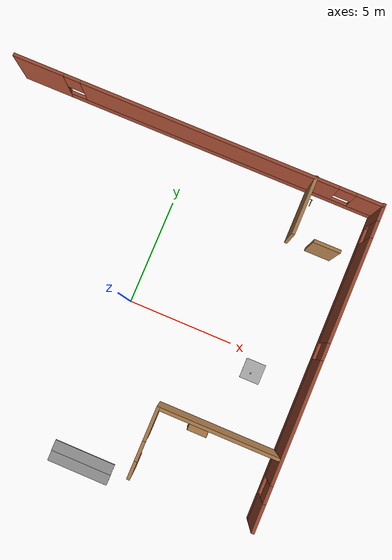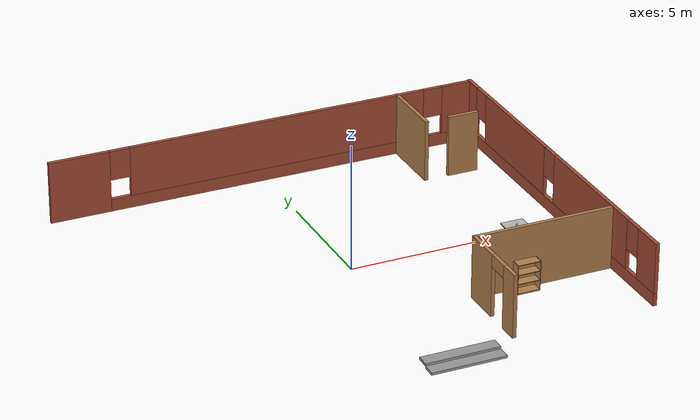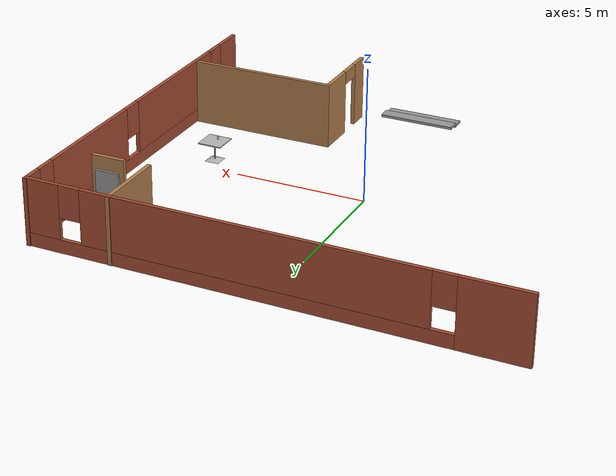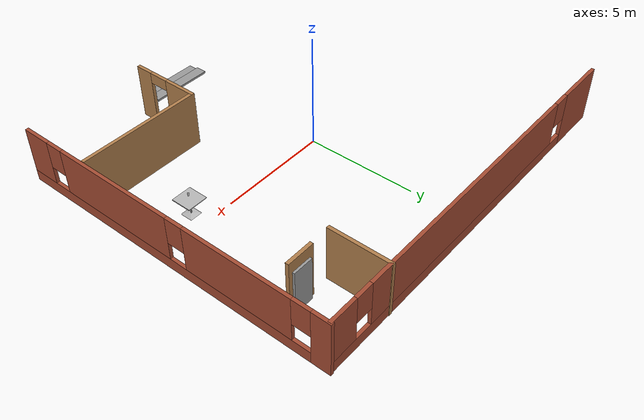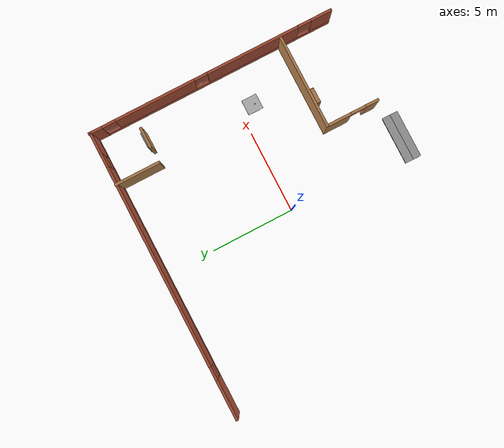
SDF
<sdf version="1.6">
 <model name="BuildingOne">
  <link name="Door_2">
   <pose>7.13008 5.46238 0 0 -0 0</pose>
   <visual name="Door_2_Visual">
    <pose>0 0 1 0 -0 0</pose>
    <geometry><box><size>0.9 0.17 2</size></box></geometry>
    <material>
     <script><uri>file://media/materials/scripts/gazebo.material</uri><name>Gazebo/Grey</name></script>
     <shader type="pixel"/>
     <ambient>0.3 0.3 0.3 1</ambient>
     <diffuse>0.7 0.7 0.7 1</diffuse>
     <specular>0.01 0.01 0.01 1</specular>
     <emissive>0 0 0 1</emissive>
    </material>
   </visual>
   <collision name="Door_2_Collision">
    <pose>0 0 1 0 -0 0</pose>
    <geometry><box><size>0.9 0.17 2</size></box></geometry>
    <surface>
     <friction>
      <ode><mu>1</mu><mu2>1</mu2><fdir1>0 0 0</fdir1><slip1>0</slip1><slip2>0</slip2></ode>
      <torsional>
       <coefficient>1</coefficient>
       <patch_radius>0</patch_radius>
       <surface_radius>0</surface_radius>
       <use_patch_radius>1</use_patch_radius>
       <ode><slip>0</slip></ode>
      </torsional>
     </friction>
     <bounce><restitution_coefficient>0</restitution_coefficient><threshold>1e+06</threshold></bounce>
     <contact>
      <collide_without_contact>0</collide_without_contact>
      <collide_without_contact_bitmask>1</collide_without_contact_bitmask>
      <collide_bitmask>1</collide_bitmask>
      <ode>
       <soft_cfm>0</soft_cfm>
       <soft_erp>0.2</soft_erp>
       <kp>1e+13</kp>
       <kd>1</kd>
       <max_vel>0.01</max_vel>
       <min_depth>0</min_depth>
      </ode>
      <bullet>
       <split_impulse>1</split_impulse>
       <split_impulse_penetration_threshold>-0.01</split_impulse_penetration_threshold>
       <soft_cfm>0</soft_cfm>
       <soft_erp>0.2</soft_erp>
       <kp>1e+13</kp>
       <kd>1</kd>
      </bullet>
     </contact>
    </surface>
   </collision>
  </link>
  <link name="Stairs_6">
   <visual name="Stairs_6_Visual_0">
    <pose>0.82349 -7.802 0.05 0 0 -3.14159</pose>
    <geometry><box><size>2.9 0.5 0.1</size></box></geometry>
    <material>
     <script><uri>file://media/materials/scripts/gazebo.material</uri><name>Gazebo/Grey</name></script>
     <ambient>1 1 1 1</ambient>
     <shader type="pixel"/>
     <diffuse>0.7 0.7 0.7 1</diffuse>
     <specular>0.01 0.01 0.01 1</specular>
     <emissive>0 0 0 1</emissive>
    </material>
    <meta><layer>0</layer></meta>
   </visual>
   <visual name="Stairs_6_Visual_1">
    <pose>0.82349 -7.302 0.15 0 0 -3.14159</pose>
    <geometry><box><size>2.9 0.5 0.1</size></box></geometry>
    <material>
     <script><uri>file://media/materials/scripts/gazebo.material</uri><name>Gazebo/Grey</name></script>
     <ambient>1 1 1 1</ambient>
     <shader type="pixel"/>
     <diffuse>0.7 0.7 0.7 1</diffuse>
     <specular>0.01 0.01 0.01 1</specular>
     <emissive>0 0 0 1</emissive>
    </material>
    <meta><layer>0</layer></meta>
   </visual>
   <collision name="Stairs_6_Collision_0">
    <pose>0.82349 -7.802 0.05 0 0 -3.14159</pose>
    <geometry><box><size>2.9 0.5 0.1</size></box></geometry>
    <surface>
     <friction>
      <ode><mu>1</mu><mu2>1</mu2><fdir1>0 0 0</fdir1><slip1>0</slip1><slip2>0</slip2></ode>
      <torsional>
       <coefficient>1</coefficient>
       <patch_radius>0</patch_radius>
       <surface_radius>0</surface_radius>
       <use_patch_radius>1</use_patch_radius>
       <ode><slip>0</slip></ode>
      </torsional>
     </friction>
     <bounce><restitution_coefficient>0</restitution_coefficient><threshold>1e+06</threshold></bounce>
     <contact>
      <collide_without_contact>0</collide_without_contact>
      <collide_without_contact_bitmask>1</collide_without_contact_bitmask>
      <collide_bitmask>1</collide_bitmask>
      <ode>
       <soft_cfm>0</soft_cfm>
       <soft_erp>0.2</soft_erp>
       <kp>1e+13</kp>
       <kd>1</kd>
       <max_vel>0.01</max_vel>
       <min_depth>0</min_depth>
      </ode>
      <bullet>
       <split_impulse>1</split_impulse>
       <split_impulse_penetration_threshold>-0.01</split_impulse_penetration_threshold>
       <soft_cfm>0</soft_cfm>
       <soft_erp>0.2</soft_erp>
       <kp>1e+13</kp>
       <kd>1</kd>
      </bullet>
     </contact>
    </surface>
   </collision>
   <collision name="Stairs_6_Collision_1">
    <pose>0.82349 -7.302 0.15 0 0 -3.14159</pose>
    <geometry><box><size>2.9 0.5 0.1</size></box></geometry>
    <surface>
     <friction>
      <ode><mu>1</mu><mu2>1</mu2><fdir1>0 0 0</fdir1><slip1>0</slip1><slip2>0</slip2></ode>
      <torsional>
       <coefficient>1</coefficient>
       <patch_radius>0</patch_radius>
       <surface_radius>0</surface_radius>
       <use_patch_radius>1</use_patch_radius>
       <ode><slip>0</slip></ode>
      </torsional>
     </friction>
     <bounce><restitution_coefficient>0</restitution_coefficient><threshold>1e+06</threshold></bounce>
     <contact>
      <collide_without_contact>0</collide_without_contact>
      <collide_without_contact_bitmask>1</collide_without_contact_bitmask>
      <collide_bitmask>1</collide_bitmask>
      <ode>
       <soft_cfm>0</soft_cfm>
       <soft_erp>0.2</soft_erp>
       <kp>1e+13</kp>
       <kd>1</kd>
       <max_vel>0.01</max_vel>
       <min_depth>0</min_depth>
      </ode>
      <bullet>
       <split_impulse>1</split_impulse>
       <split_impulse_penetration_threshold>-0.01</split_impulse_penetration_threshold>
       <soft_cfm>0</soft_cfm>
       <soft_erp>0.2</soft_erp>
       <kp>1e+13</kp>
       <kd>1</kd>
      </bullet>
     </contact>
    </surface>
   </collision>
  </link>
  <link name="Wall_11">
   <pose>3.11744 -5.29319 0 0 -0 1.57077</pose>
   <visual name="Wall_11_Visual_0">
    <pose>-1.22398 0 1.25 0 -0 0</pose>
    <geometry><box><size>0.802043 0.15 2.5</size></box></geometry>
    <material>
     <script><uri>file://media/materials/scripts/gazebo.material</uri><name>Gazebo/Wood</name></script>
     <ambient>1 1 1 1</ambient>
     <shader type="pixel"/>
     <diffuse>1 1 1 1</diffuse>
     <specular>0.2 0.2 0.2 1</specular>
     <emissive>0 0 0 1</emissive>
    </material>
    <meta><layer>0</layer></meta>
   </visual>
   <visual name="Wall_11_Visual_1">
    <pose>0.851022 0 1.25 0 -0 0</pose>
    <geometry><box><size>1.54796 0.15 2.5</size></box></geometry>
    <material>
     <script><uri>file://media/materials/scripts/gazebo.material</uri><name>Gazebo/Wood</name></script>
     <ambient>1 1 1 1</ambient>
     <shader type="pixel"/>
     <diffuse>1 1 1 1</diffuse>
     <specular>0.2 0.2 0.2 1</specular>
     <emissive>0 0 0 1</emissive>
    </material>
    <meta><layer>0</layer></meta>
   </visual>
   <visual name="Wall_11_Visual_2">
    <pose>-0.372957 0 2.25 0 -0 0</pose>
    <geometry><box><size>0.9 0.15 0.5</size></box></geometry>
    <material>
     <script><uri>file://media/materials/scripts/gazebo.material</uri><name>Gazebo/Wood</name></script>
     <ambient>1 1 1 1</ambient>
     <shader type="pixel"/>
     <diffuse>1 1 1 1</diffuse>
     <specular>0.2 0.2 0.2 1</specular>
     <emissive>0 0 0 1</emissive>
    </material>
    <meta><layer>0</layer></meta>
   </visual>
   <collision name="Wall_11_Collision_0">
    <pose>-1.22398 0 1.25 0 -0 0</pose>
    <geometry><box><size>0.802043 0.15 2.5</size></box></geometry>
    <surface>
     <friction>
      <ode><mu>1</mu><mu2>1</mu2><fdir1>0 0 0</fdir1><slip1>0</slip1><slip2>0</slip2></ode>
      <torsional>
       <coefficient>1</coefficient>
       <patch_radius>0</patch_radius>
       <surface_radius>0</surface_radius>
       <use_patch_radius>1</use_patch_radius>
       <ode><slip>0</slip></ode>
      </torsional>
     </friction>
     <bounce><restitution_coefficient>0</restitution_coefficient><threshold>1e+06</threshold></bounce>
     <contact>
      <collide_without_contact>0</collide_without_contact>
      <collide_without_contact_bitmask>1</collide_without_contact_bitmask>
      <collide_bitmask>1</collide_bitmask>
      <ode>
       <soft_cfm>0</soft_cfm>
       <soft_erp>0.2</soft_erp>
       <kp>1e+13</kp>
       <kd>1</kd>
       <max_vel>0.01</max_vel>
       <min_depth>0</min_depth>
      </ode>
      <bullet>
       <split_impulse>1</split_impulse>
       <split_impulse_penetration_threshold>-0.01</split_impulse_penetration_threshold>
       <soft_cfm>0</soft_cfm>
       <soft_erp>0.2</soft_erp>
       <kp>1e+13</kp>
       <kd>1</kd>
      </bullet>
     </contact>
    </surface>
   </collision>
   <collision name="Wall_11_Collision_1">
    <pose>0.851022 0 1.25 0 -0 0</pose>
    <geometry><box><size>1.54796 0.15 2.5</size></box></geometry>
    <surface>
     <friction>
      <ode><mu>1</mu><mu2>1</mu2><fdir1>0 0 0</fdir1><slip1>0</slip1><slip2>0</slip2></ode>
      <torsional>
       <coefficient>1</coefficient>
       <patch_radius>0</patch_radius>
       <surface_radius>0</surface_radius>
       <use_patch_radius>1</use_patch_radius>
       <ode><slip>0</slip></ode>
      </torsional>
     </friction>
     <bounce><restitution_coefficient>0</restitution_coefficient><threshold>1e+06</threshold></bounce>
     <contact>
      <collide_without_contact>0</collide_without_contact>
      <collide_without_contact_bitmask>1</collide_without_contact_bitmask>
      <collide_bitmask>1</collide_bitmask>
      <ode>
       <soft_cfm>0</soft_cfm>
       <soft_erp>0.2</soft_erp>
       <kp>1e+13</kp>
       <kd>1</kd>
       <max_vel>0.01</max_vel>
       <min_depth>0</min_depth>
      </ode>
      <bullet>
       <split_impulse>1</split_impulse>
       <split_impulse_penetration_threshold>-0.01</split_impulse_penetration_threshold>
       <soft_cfm>0</soft_cfm>
       <soft_erp>0.2</soft_erp>
       <kp>1e+13</kp>
       <kd>1</kd>
      </bullet>
     </contact>
    </surface>
   </collision>
   <collision name="Wall_11_Collision_2">
    <pose>-0.372957 0 2.25 0 -0 0</pose>
    <geometry><box><size>0.9 0.15 0.5</size></box></geometry>
    <surface>
     <friction>
      <ode><mu>1</mu><mu2>1</mu2><fdir1>0 0 0</fdir1><slip1>0</slip1><slip2>0</slip2></ode>
      <torsional>
       <coefficient>1</coefficient>
       <patch_radius>0</patch_radius>
       <surface_radius>0</surface_radius>
       <use_patch_radius>1</use_patch_radius>
       <ode><slip>0</slip></ode>
      </torsional>
     </friction>
     <bounce><restitution_coefficient>0</restitution_coefficient><threshold>1e+06</threshold></bounce>
     <contact>
      <collide_without_contact>0</collide_without_contact>
      <collide_without_contact_bitmask>1</collide_without_contact_bitmask>
      <collide_bitmask>1</collide_bitmask>
      <ode>
       <soft_cfm>0</soft_cfm>
       <soft_erp>0.2</soft_erp>
       <kp>1e+13</kp>
       <kd>1</kd>
       <max_vel>0.01</max_vel>
       <min_depth>0</min_depth>
      </ode>
      <bullet>
       <split_impulse>1</split_impulse>
       <split_impulse_penetration_threshold>-0.01</split_impulse_penetration_threshold>
       <soft_cfm>0</soft_cfm>
       <soft_erp>0.2</soft_erp>
       <kp>1e+13</kp>
       <kd>1</kd>
      </bullet>
     </contact>
    </surface>
   </collision>
  </link>
  <link name="Wall_12">
   <pose>5.84249 -3.74317 0 0 -0 0</pose>
   <visual name="Wall_12_Visual">
    <pose>0 0 1.25 0 -0 0</pose>
    <geometry><box><size>5.6 0.15 2.5</size></box></geometry>
    <material>
     <script><uri>file://media/materials/scripts/gazebo.material</uri><name>Gazebo/Wood</name></script>
     <ambient>1 1 1 1</ambient>
     <shader type="pixel"/>
     <diffuse>1 1 1 1</diffuse>
     <specular>0.2 0.2 0.2 1</specular>
     <emissive>0 0 0 1</emissive>
    </material>
    <meta><layer>0</layer></meta>
   </visual>
   <collision name="Wall_12_Collision">
    <pose>0 0 1.25 0 -0 0</pose>
    <geometry><box><size>5.6 0.15 2.5</size></box></geometry>
    <surface>
     <friction>
      <ode><mu>1</mu><mu2>1</mu2><fdir1>0 0 0</fdir1><slip1>0</slip1><slip2>0</slip2></ode>
      <torsional>
       <coefficient>1</coefficient>
       <patch_radius>0</patch_radius>
       <surface_radius>0</surface_radius>
       <use_patch_radius>1</use_patch_radius>
       <ode><slip>0</slip></ode>
      </torsional>
     </friction>
     <bounce><restitution_coefficient>0</restitution_coefficient><threshold>1e+06</threshold></bounce>
     <contact>
      <collide_without_contact>0</collide_without_contact>
      <collide_without_contact_bitmask>1</collide_without_contact_bitmask>
      <collide_bitmask>1</collide_bitmask>
      <ode>
       <soft_cfm>0</soft_cfm>
       <soft_erp>0.2</soft_erp>
       <kp>1e+13</kp>
       <kd>1</kd>
       <max_vel>0.01</max_vel>
       <min_depth>0</min_depth>
      </ode>
      <bullet>
       <split_impulse>1</split_impulse>
       <split_impulse_penetration_threshold>-0.01</split_impulse_penetration_threshold>
       <soft_cfm>0</soft_cfm>
       <soft_erp>0.2</soft_erp>
       <kp>1e+13</kp>
       <kd>1</kd>
      </bullet>
     </contact>
    </surface>
   </collision>
  </link>
  <link name="Wall_4">
   <pose>-0.00351 7.94782 0 0 -0 0</pose>
   <visual name="Wall_4_Visual_0">
    <pose>-7.54363 0 1.25 0 -0 0</pose>
    <geometry><box><size>2.41275 0.15 2.5</size></box></geometry>
    <material>
     <script><uri>file://media/materials/scripts/gazebo.material</uri><name>Gazebo/Bricks</name></script>
     <ambient>1 1 1 1</ambient>
     <shader type="pixel"/>
     <diffuse>1 1 1 1</diffuse>
     <specular>0.2 0.2 0.2 1</specular>
     <emissive>0 0 0 1</emissive>
    </material>
    <meta><layer>0</layer></meta>
   </visual>
   <visual name="Wall_4_Visual_1">
    <pose>1.20637 0 0.25 0 -0 0</pose>
    <geometry><box><size>15.0873 0.15 0.5</size></box></geometry>
    <material>
     <script><uri>file://media/materials/scripts/gazebo.material</uri><name>Gazebo/Bricks</name></script>
     <ambient>1 1 1 1</ambient>
     <shader type="pixel"/>
     <diffuse>1 1 1 1</diffuse>
     <specular>0.2 0.2 0.2 1</specular>
     <emissive>0 0 0 1</emissive>
    </material>
    <meta><layer>0</layer></meta>
   </visual>
   <visual name="Wall_4_Visual_2">
    <pose>0.5633 0 1.5 0 -0 0</pose>
    <geometry><box><size>12.2011 0.15 2</size></box></geometry>
    <material>
     <script><uri>file://media/materials/scripts/gazebo.material</uri><name>Gazebo/Bricks</name></script>
     <ambient>1 1 1 1</ambient>
     <shader type="pixel"/>
     <diffuse>1 1 1 1</diffuse>
     <specular>0.2 0.2 0.2 1</specular>
     <emissive>0 0 0 1</emissive>
    </material>
    <meta><layer>0</layer></meta>
   </visual>
   <visual name="Wall_4_Visual_3">
    <pose>8.10693 0 1.5 0 -0 0</pose>
    <geometry><box><size>1.28615 0.15 2</size></box></geometry>
    <material>
     <script><uri>file://media/materials/scripts/gazebo.material</uri><name>Gazebo/Bricks</name></script>
     <ambient>1 1 1 1</ambient>
     <shader type="pixel"/>
     <diffuse>1 1 1 1</diffuse>
     <specular>0.2 0.2 0.2 1</specular>
     <emissive>0 0 0 1</emissive>
    </material>
    <meta><layer>0</layer></meta>
   </visual>
   <visual name="Wall_4_Visual_4">
    <pose>-5.93725 0 1.9 0 -0 0</pose>
    <geometry><box><size>0.8 0.15 1.2</size></box></geometry>
    <material>
     <script><uri>file://media/materials/scripts/gazebo.material</uri><name>Gazebo/Bricks</name></script>
     <ambient>1 1 1 1</ambient>
     <shader type="pixel"/>
     <diffuse>1 1 1 1</diffuse>
     <specular>0.2 0.2 0.2 1</specular>
     <emissive>0 0 0 1</emissive>
    </material>
    <meta><layer>0</layer></meta>
   </visual>
   <visual name="Wall_4_Visual_5">
    <pose>7.06385 0 1.9 0 -0 0</pose>
    <geometry><box><size>0.8 0.15 1.2</size></box></geometry>
    <material>
     <script><uri>file://media/materials/scripts/gazebo.material</uri><name>Gazebo/Bricks</name></script>
     <ambient>1 1 1 1</ambient>
     <shader type="pixel"/>
     <diffuse>1 1 1 1</diffuse>
     <specular>0.2 0.2 0.2 1</specular>
     <emissive>0 0 0 1</emissive>
    </material>
    <meta><layer>0</layer></meta>
   </visual>
   <collision name="Wall_4_Collision_0">
    <pose>-7.54363 0 1.25 0 -0 0</pose>
    <geometry><box><size>2.41275 0.15 2.5</size></box></geometry>
    <surface>
     <friction>
      <ode><mu>1</mu><mu2>1</mu2><fdir1>0 0 0</fdir1><slip1>0</slip1><slip2>0</slip2></ode>
      <torsional>
       <coefficient>1</coefficient>
       <patch_radius>0</patch_radius>
       <surface_radius>0</surface_radius>
       <use_patch_radius>1</use_patch_radius>
       <ode><slip>0</slip></ode>
      </torsional>
     </friction>
     <bounce><restitution_coefficient>0</restitution_coefficient><threshold>1e+06</threshold></bounce>
     <contact>
      <collide_without_contact>0</collide_without_contact>
      <collide_without_contact_bitmask>1</collide_without_contact_bitmask>
      <collide_bitmask>1</collide_bitmask>
      <ode>
       <soft_cfm>0</soft_cfm>
       <soft_erp>0.2</soft_erp>
       <kp>1e+13</kp>
       <kd>1</kd>
       <max_vel>0.01</max_vel>
       <min_depth>0</min_depth>
      </ode>
      <bullet>
       <split_impulse>1</split_impulse>
       <split_impulse_penetration_threshold>-0.01</split_impulse_penetration_threshold>
       <soft_cfm>0</soft_cfm>
       <soft_erp>0.2</soft_erp>
       <kp>1e+13</kp>
       <kd>1</kd>
      </bullet>
     </contact>
    </surface>
   </collision>
   <collision name="Wall_4_Collision_1">
    <pose>1.20637 0 0.25 0 -0 0</pose>
    <geometry><box><size>15.0873 0.15 0.5</size></box></geometry>
    <surface>
     <friction>
      <ode><mu>1</mu><mu2>1</mu2><fdir1>0 0 0</fdir1><slip1>0</slip1><slip2>0</slip2></ode>
      <torsional>
       <coefficient>1</coefficient>
       <patch_radius>0</patch_radius>
       <surface_radius>0</surface_radius>
       <use_patch_radius>1</use_patch_radius>
       <ode><slip>0</slip></ode>
      </torsional>
     </friction>
     <bounce><restitution_coefficient>0</restitution_coefficient><threshold>1e+06</threshold></bounce>
     <contact>
      <collide_without_contact>0</collide_without_contact>
      <collide_without_contact_bitmask>1</collide_without_contact_bitmask>
      <collide_bitmask>1</collide_bitmask>
      <ode>
       <soft_cfm>0</soft_cfm>
       <soft_erp>0.2</soft_erp>
       <kp>1e+13</kp>
       <kd>1</kd>
       <max_vel>0.01</max_vel>
       <min_depth>0</min_depth>
      </ode>
      <bullet>
       <split_impulse>1</split_impulse>
       <split_impulse_penetration_threshold>-0.01</split_impulse_penetration_threshold>
       <soft_cfm>0</soft_cfm>
       <soft_erp>0.2</soft_erp>
       <kp>1e+13</kp>
       <kd>1</kd>
      </bullet>
     </contact>
    </surface>
   </collision>
   <collision name="Wall_4_Collision_2">
    <pose>0.5633 0 1.5 0 -0 0</pose>
    <geometry><box><size>12.2011 0.15 2</size></box></geometry>
    <surface>
     <friction>
      <ode><mu>1</mu><mu2>1</mu2><fdir1>0 0 0</fdir1><slip1>0</slip1><slip2>0</slip2></ode>
      <torsional>
       <coefficient>1</coefficient>
       <patch_radius>0</patch_radius>
       <surface_radius>0</surface_radius>
       <use_patch_radius>1</use_patch_radius>
       <ode><slip>0</slip></ode>
      </torsional>
     </friction>
     <bounce><restitution_coefficient>0</restitution_coefficient><threshold>1e+06</threshold></bounce>
     <contact>
      <collide_without_contact>0</collide_without_contact>
      <collide_without_contact_bitmask>1</collide_without_contact_bitmask>
      <collide_bitmask>1</collide_bitmask>
      <ode>
       <soft_cfm>0</soft_cfm>
       <soft_erp>0.2</soft_erp>
       <kp>1e+13</kp>
       <kd>1</kd>
       <max_vel>0.01</max_vel>
       <min_depth>0</min_depth>
      </ode>
      <bullet>
       <split_impulse>1</split_impulse>
       <split_impulse_penetration_threshold>-0.01</split_impulse_penetration_threshold>
       <soft_cfm>0</soft_cfm>
       <soft_erp>0.2</soft_erp>
       <kp>1e+13</kp>
       <kd>1</kd>
      </bullet>
     </contact>
    </surface>
   </collision>
   <collision name="Wall_4_Collision_3">
    <pose>8.10693 0 1.5 0 -0 0</pose>
    <geometry><box><size>1.28615 0.15 2</size></box></geometry>
    <surface>
     <friction>
      <ode><mu>1</mu><mu2>1</mu2><fdir1>0 0 0</fdir1><slip1>0</slip1><slip2>0</slip2></ode>
      <torsional>
       <coefficient>1</coefficient>
       <patch_radius>0</patch_radius>
       <surface_radius>0</surface_radius>
       <use_patch_radius>1</use_patch_radius>
       <ode><slip>0</slip></ode>
      </torsional>
     </friction>
     <bounce><restitution_coefficient>0</restitution_coefficient><threshold>1e+06</threshold></bounce>
     <contact>
      <collide_without_contact>0</collide_without_contact>
      <collide_without_contact_bitmask>1</collide_without_contact_bitmask>
      <collide_bitmask>1</collide_bitmask>
      <ode>
       <soft_cfm>0</soft_cfm>
       <soft_erp>0.2</soft_erp>
       <kp>1e+13</kp>
       <kd>1</kd>
       <max_vel>0.01</max_vel>
       <min_depth>0</min_depth>
      </ode>
      <bullet>
       <split_impulse>1</split_impulse>
       <split_impulse_penetration_threshold>-0.01</split_impulse_penetration_threshold>
       <soft_cfm>0</soft_cfm>
       <soft_erp>0.2</soft_erp>
       <kp>1e+13</kp>
       <kd>1</kd>
      </bullet>
     </contact>
    </surface>
   </collision>
   <collision name="Wall_4_Collision_5">
    <pose>7.06385 0 1.9 0 -0 0</pose>
    <geometry><box><size>0.8 0.15 1.2</size></box></geometry>
    <surface>
     <friction>
      <ode><mu>1</mu><mu2>1</mu2><fdir1>0 0 0</fdir1><slip1>0</slip1><slip2>0</slip2></ode>
      <torsional>
       <coefficient>1</coefficient>
       <patch_radius>0</patch_radius>
       <surface_radius>0</surface_radius>
       <use_patch_radius>1</use_patch_radius>
       <ode><slip>0</slip></ode>
      </torsional>
     </friction>
     <bounce><restitution_coefficient>0</restitution_coefficient><threshold>1e+06</threshold></bounce>
     <contact>
      <collide_without_contact>0</collide_without_contact>
      <collide_without_contact_bitmask>1</collide_without_contact_bitmask>
      <collide_bitmask>1</collide_bitmask>
      <ode>
       <soft_cfm>0</soft_cfm>
       <soft_erp>0.2</soft_erp>
       <kp>1e+13</kp>
       <kd>1</kd>
       <max_vel>0.01</max_vel>
       <min_depth>0</min_depth>
      </ode>
      <bullet>
       <split_impulse>1</split_impulse>
       <split_impulse_penetration_threshold>-0.01</split_impulse_penetration_threshold>
       <soft_cfm>0</soft_cfm>
       <soft_erp>0.2</soft_erp>
       <kp>1e+13</kp>
       <kd>1</kd>
      </bullet>
     </contact>
    </surface>
   </collision>
   <collision name="Wall_4_Collision_4">
    <pose>-5.93725 0 1.9 0 -0 0</pose>
    <geometry><box><size>0.8 0.15 1.2</size></box></geometry>
    <surface>
     <friction>
      <ode><mu>1</mu><mu2>1</mu2><fdir1>0 0 0</fdir1><slip1>0</slip1><slip2>0</slip2></ode>
      <torsional>
       <coefficient>1</coefficient>
       <patch_radius>0</patch_radius>
       <surface_radius>0</surface_radius>
       <use_patch_radius>1</use_patch_radius>
       <ode><slip>0</slip></ode>
      </torsional>
     </friction>
     <bounce><restitution_coefficient>0</restitution_coefficient><threshold>1e+06</threshold></bounce>
     <contact>
      <collide_without_contact>0</collide_without_contact>
      <collide_without_contact_bitmask>1</collide_without_contact_bitmask>
      <collide_bitmask>1</collide_bitmask>
      <ode>
       <soft_cfm>0</soft_cfm>
       <soft_erp>0.2</soft_erp>
       <kp>1e+13</kp>
       <kd>1</kd>
       <max_vel>0.01</max_vel>
       <min_depth>0</min_depth>
      </ode>
      <bullet>
       <split_impulse>1</split_impulse>
       <split_impulse_penetration_threshold>-0.01</split_impulse_penetration_threshold>
       <soft_cfm>0</soft_cfm>
       <soft_erp>0.2</soft_erp>
       <kp>1e+13</kp>
       <kd>1</kd>
      </bullet>
     </contact>
    </surface>
   </collision>
  </link>
  <link name="Wall_6">
   <pose>8.72747 0.558911 0 0 0 -1.5708</pose>
   <visual name="Wall_6_Visual_0">
    <pose>-7.08856 0 1.25 0 -0 0</pose>
    <geometry><box><size>0.822882 0.15 2.5</size></box></geometry>
    <material>
     <script><uri>file://media/materials/scripts/gazebo.material</uri><name>Gazebo/Bricks</name></script>
     <ambient>1 1 1 1</ambient>
     <shader type="pixel"/>
     <diffuse>1 1 1 1</diffuse>
     <specular>0.2 0.2 0.2 1</specular>
     <emissive>0 0 0 1</emissive>
    </material>
    <meta><layer>0</layer></meta>
   </visual>
   <visual name="Wall_6_Visual_1">
    <pose>0.411441 0 0.25 0 -0 0</pose>
    <geometry><box><size>14.1771 0.15 0.5</size></box></geometry>
    <material>
     <script><uri>file://media/materials/scripts/gazebo.material</uri><name>Gazebo/Bricks</name></script>
     <ambient>1 1 1 1</ambient>
     <shader type="pixel"/>
     <diffuse>1 1 1 1</diffuse>
     <specular>0.2 0.2 0.2 1</specular>
     <emissive>0 0 0 1</emissive>
    </material>
    <meta><layer>0</layer></meta>
   </visual>
   <visual name="Wall_6_Visual_2">
    <pose>-3.44149 0 1.5 0 -0 0</pose>
    <geometry><box><size>4.87127 0.15 2</size></box></geometry>
    <material>
     <script><uri>file://media/materials/scripts/gazebo.material</uri><name>Gazebo/Bricks</name></script>
     <ambient>1 1 1 1</ambient>
     <shader type="pixel"/>
     <diffuse>1 1 1 1</diffuse>
     <specular>0.2 0.2 0.2 1</specular>
     <emissive>0 0 0 1</emissive>
    </material>
    <meta><layer>0</layer></meta>
   </visual>
   <visual name="Wall_6_Visual_3">
    <pose>2.6043 0 1.5 0 -0 0</pose>
    <geometry><box><size>5.6203 0.15 2</size></box></geometry>
    <material>
     <script><uri>file://media/materials/scripts/gazebo.material</uri><name>Gazebo/Bricks</name></script>
     <ambient>1 1 1 1</ambient>
     <shader type="pixel"/>
     <diffuse>1 1 1 1</diffuse>
     <specular>0.2 0.2 0.2 1</specular>
     <emissive>0 0 0 1</emissive>
    </material>
    <meta><layer>0</layer></meta>
   </visual>
   <visual name="Wall_6_Visual_4">
    <pose>6.85722 0 1.5 0 -0 0</pose>
    <geometry><box><size>1.28555 0.15 2</size></box></geometry>
    <material>
     <script><uri>file://media/materials/scripts/gazebo.material</uri><name>Gazebo/Bricks</name></script>
     <ambient>1 1 1 1</ambient>
     <shader type="pixel"/>
     <diffuse>1 1 1 1</diffuse>
     <specular>0.2 0.2 0.2 1</specular>
     <emissive>0 0 0 1</emissive>
    </material>
    <meta><layer>0</layer></meta>
   </visual>
   <visual name="Wall_6_Visual_5">
    <pose>-6.27712 0 1.9 0 -0 0</pose>
    <geometry><box><size>0.8 0.15 1.2</size></box></geometry>
    <material>
     <script><uri>file://media/materials/scripts/gazebo.material</uri><name>Gazebo/Bricks</name></script>
     <ambient>1 1 1 1</ambient>
     <shader type="pixel"/>
     <diffuse>1 1 1 1</diffuse>
     <specular>0.2 0.2 0.2 1</specular>
     <emissive>0 0 0 1</emissive>
    </material>
    <meta><layer>0</layer></meta>
   </visual>
   <visual name="Wall_6_Visual_6">
    <pose>-0.605853 0 1.9 0 -0 0</pose>
    <geometry><box><size>0.8 0.15 1.2</size></box></geometry>
    <material>
     <script><uri>file://media/materials/scripts/gazebo.material</uri><name>Gazebo/Bricks</name></script>
     <ambient>1 1 1 1</ambient>
     <shader type="pixel"/>
     <diffuse>1 1 1 1</diffuse>
     <specular>0.2 0.2 0.2 1</specular>
     <emissive>0 0 0 1</emissive>
    </material>
    <meta><layer>0</layer></meta>
   </visual>
   <visual name="Wall_6_Visual_7">
    <pose>5.81445 0 1.9 0 -0 0</pose>
    <geometry><box><size>0.8 0.15 1.2</size></box></geometry>
    <material>
     <script><uri>file://media/materials/scripts/gazebo.material</uri><name>Gazebo/Bricks</name></script>
     <ambient>1 1 1 1</ambient>
     <shader type="pixel"/>
     <diffuse>1 1 1 1</diffuse>
     <specular>0.2 0.2 0.2 1</specular>
     <emissive>0 0 0 1</emissive>
    </material>
    <meta><layer>0</layer></meta>
   </visual>
   <collision name="Wall_6_Collision_0">
    <pose>-7.08856 0 1.25 0 -0 0</pose>
    <geometry><box><size>0.822882 0.15 2.5</size></box></geometry>
    <surface>
     <friction>
      <ode><mu>1</mu><mu2>1</mu2><fdir1>0 0 0</fdir1><slip1>0</slip1><slip2>0</slip2></ode>
      <torsional>
       <coefficient>1</coefficient>
       <patch_radius>0</patch_radius>
       <surface_radius>0</surface_radius>
       <use_patch_radius>1</use_patch_radius>
       <ode><slip>0</slip></ode>
      </torsional>
     </friction>
     <bounce><restitution_coefficient>0</restitution_coefficient><threshold>1e+06</threshold></bounce>
     <contact>
      <collide_without_contact>0</collide_without_contact>
      <collide_without_contact_bitmask>1</collide_without_contact_bitmask>
      <collide_bitmask>1</collide_bitmask>
      <ode>
       <soft_cfm>0</soft_cfm>
       <soft_erp>0.2</soft_erp>
       <kp>1e+13</kp>
       <kd>1</kd>
       <max_vel>0.01</max_vel>
       <min_depth>0</min_depth>
      </ode>
      <bullet>
       <split_impulse>1</split_impulse>
       <split_impulse_penetration_threshold>-0.01</split_impulse_penetration_threshold>
       <soft_cfm>0</soft_cfm>
       <soft_erp>0.2</soft_erp>
       <kp>1e+13</kp>
       <kd>1</kd>
      </bullet>
     </contact>
    </surface>
   </collision>
   <collision name="Wall_6_Collision_1">
    <pose>0.411441 0 0.25 0 -0 0</pose>
    <geometry><box><size>14.1771 0.15 0.5</size></box></geometry>
    <surface>
     <friction>
      <ode><mu>1</mu><mu2>1</mu2><fdir1>0 0 0</fdir1><slip1>0</slip1><slip2>0</slip2></ode>
      <torsional>
       <coefficient>1</coefficient>
       <patch_radius>0</patch_radius>
       <surface_radius>0</surface_radius>
       <use_patch_radius>1</use_patch_radius>
       <ode><slip>0</slip></ode>
      </torsional>
     </friction>
     <bounce><restitution_coefficient>0</restitution_coefficient><threshold>1e+06</threshold></bounce>
     <contact>
      <collide_without_contact>0</collide_without_contact>
      <collide_without_contact_bitmask>1</collide_without_contact_bitmask>
      <collide_bitmask>1</collide_bitmask>
      <ode>
       <soft_cfm>0</soft_cfm>
       <soft_erp>0.2</soft_erp>
       <kp>1e+13</kp>
       <kd>1</kd>
       <max_vel>0.01</max_vel>
       <min_depth>0</min_depth>
      </ode>
      <bullet>
       <split_impulse>1</split_impulse>
       <split_impulse_penetration_threshold>-0.01</split_impulse_penetration_threshold>
       <soft_cfm>0</soft_cfm>
       <soft_erp>0.2</soft_erp>
       <kp>1e+13</kp>
       <kd>1</kd>
      </bullet>
     </contact>
    </surface>
   </collision>
   <collision name="Wall_6_Collision_2">
    <pose>-3.44149 0 1.5 0 -0 0</pose>
    <geometry><box><size>4.87127 0.15 2</size></box></geometry>
    <surface>
     <friction>
      <ode><mu>1</mu><mu2>1</mu2><fdir1>0 0 0</fdir1><slip1>0</slip1><slip2>0</slip2></ode>
      <torsional>
       <coefficient>1</coefficient>
       <patch_radius>0</patch_radius>
       <surface_radius>0</surface_radius>
       <use_patch_radius>1</use_patch_radius>
       <ode><slip>0</slip></ode>
      </torsional>
     </friction>
     <bounce><restitution_coefficient>0</restitution_coefficient><threshold>1e+06</threshold></bounce>
     <contact>
      <collide_without_contact>0</collide_without_contact>
      <collide_without_contact_bitmask>1</collide_without_contact_bitmask>
      <collide_bitmask>1</collide_bitmask>
      <ode>
       <soft_cfm>0</soft_cfm>
       <soft_erp>0.2</soft_erp>
       <kp>1e+13</kp>
       <kd>1</kd>
       <max_vel>0.01</max_vel>
       <min_depth>0</min_depth>
      </ode>
      <bullet>
       <split_impulse>1</split_impulse>
       <split_impulse_penetration_threshold>-0.01</split_impulse_penetration_threshold>
       <soft_cfm>0</soft_cfm>
       <soft_erp>0.2</soft_erp>
       <kp>1e+13</kp>
       <kd>1</kd>
      </bullet>
     </contact>
    </surface>
   </collision>
   <collision name="Wall_6_Collision_3">
    <pose>2.6043 0 1.5 0 -0 0</pose>
    <geometry><box><size>5.6203 0.15 2</size></box></geometry>
    <surface>
     <friction>
      <ode><mu>1</mu><mu2>1</mu2><fdir1>0 0 0</fdir1><slip1>0</slip1><slip2>0</slip2></ode>
      <torsional>
       <coefficient>1</coefficient>
       <patch_radius>0</patch_radius>
       <surface_radius>0</surface_radius>
       <use_patch_radius>1</use_patch_radius>
       <ode><slip>0</slip></ode>
      </torsional>
     </friction>
     <bounce><restitution_coefficient>0</restitution_coefficient><threshold>1e+06</threshold></bounce>
     <contact>
      <collide_without_contact>0</collide_without_contact>
      <collide_without_contact_bitmask>1</collide_without_contact_bitmask>
      <collide_bitmask>1</collide_bitmask>
      <ode>
       <soft_cfm>0</soft_cfm>
       <soft_erp>0.2</soft_erp>
       <kp>1e+13</kp>
       <kd>1</kd>
       <max_vel>0.01</max_vel>
       <min_depth>0</min_depth>
      </ode>
      <bullet>
       <split_impulse>1</split_impulse>
       <split_impulse_penetration_threshold>-0.01</split_impulse_penetration_threshold>
       <soft_cfm>0</soft_cfm>
       <soft_erp>0.2</soft_erp>
       <kp>1e+13</kp>
       <kd>1</kd>
      </bullet>
     </contact>
    </surface>
   </collision>
   <collision name="Wall_6_Collision_4">
    <pose>6.85722 0 1.5 0 -0 0</pose>
    <geometry><box><size>1.28555 0.15 2</size></box></geometry>
    <surface>
     <friction>
      <ode><mu>1</mu><mu2>1</mu2><fdir1>0 0 0</fdir1><slip1>0</slip1><slip2>0</slip2></ode>
      <torsional>
       <coefficient>1</coefficient>
       <patch_radius>0</patch_radius>
       <surface_radius>0</surface_radius>
       <use_patch_radius>1</use_patch_radius>
       <ode><slip>0</slip></ode>
      </torsional>
     </friction>
     <bounce><restitution_coefficient>0</restitution_coefficient><threshold>1e+06</threshold></bounce>
     <contact>
      <collide_without_contact>0</collide_without_contact>
      <collide_without_contact_bitmask>1</collide_without_contact_bitmask>
      <collide_bitmask>1</collide_bitmask>
      <ode>
       <soft_cfm>0</soft_cfm>
       <soft_erp>0.2</soft_erp>
       <kp>1e+13</kp>
       <kd>1</kd>
       <max_vel>0.01</max_vel>
       <min_depth>0</min_depth>
      </ode>
      <bullet>
       <split_impulse>1</split_impulse>
       <split_impulse_penetration_threshold>-0.01</split_impulse_penetration_threshold>
       <soft_cfm>0</soft_cfm>
       <soft_erp>0.2</soft_erp>
       <kp>1e+13</kp>
       <kd>1</kd>
      </bullet>
     </contact>
    </surface>
   </collision>
   <collision name="Wall_6_Collision_7">
    <pose>5.81445 0 1.9 0 -0 0</pose>
    <geometry><box><size>0.8 0.15 1.2</size></box></geometry>
    <surface>
     <friction>
      <ode><mu>1</mu><mu2>1</mu2><fdir1>0 0 0</fdir1><slip1>0</slip1><slip2>0</slip2></ode>
      <torsional>
       <coefficient>1</coefficient>
       <patch_radius>0</patch_radius>
       <surface_radius>0</surface_radius>
       <use_patch_radius>1</use_patch_radius>
       <ode><slip>0</slip></ode>
      </torsional>
     </friction>
     <bounce><restitution_coefficient>0</restitution_coefficient><threshold>1e+06</threshold></bounce>
     <contact>
      <collide_without_contact>0</collide_without_contact>
      <collide_without_contact_bitmask>1</collide_without_contact_bitmask>
      <collide_bitmask>1</collide_bitmask>
      <ode>
       <soft_cfm>0</soft_cfm>
       <soft_erp>0.2</soft_erp>
       <kp>1e+13</kp>
       <kd>1</kd>
       <max_vel>0.01</max_vel>
       <min_depth>0</min_depth>
      </ode>
      <bullet>
       <split_impulse>1</split_impulse>
       <split_impulse_penetration_threshold>-0.01</split_impulse_penetration_threshold>
       <soft_cfm>0</soft_cfm>
       <soft_erp>0.2</soft_erp>
       <kp>1e+13</kp>
       <kd>1</kd>
      </bullet>
     </contact>
    </surface>
   </collision>
   <collision name="Wall_6_Collision_5">
    <pose>-6.27712 0 1.9 0 -0 0</pose>
    <geometry><box><size>0.8 0.15 1.2</size></box></geometry>
    <surface>
     <friction>
      <ode><mu>1</mu><mu2>1</mu2><fdir1>0 0 0</fdir1><slip1>0</slip1><slip2>0</slip2></ode>
      <torsional>
       <coefficient>1</coefficient>
       <patch_radius>0</patch_radius>
       <surface_radius>0</surface_radius>
       <use_patch_radius>1</use_patch_radius>
       <ode><slip>0</slip></ode>
      </torsional>
     </friction>
     <bounce><restitution_coefficient>0</restitution_coefficient><threshold>1e+06</threshold></bounce>
     <contact>
      <collide_without_contact>0</collide_without_contact>
      <collide_without_contact_bitmask>1</collide_without_contact_bitmask>
      <collide_bitmask>1</collide_bitmask>
      <ode>
       <soft_cfm>0</soft_cfm>
       <soft_erp>0.2</soft_erp>
       <kp>1e+13</kp>
       <kd>1</kd>
       <max_vel>0.01</max_vel>
       <min_depth>0</min_depth>
      </ode>
      <bullet>
       <split_impulse>1</split_impulse>
       <split_impulse_penetration_threshold>-0.01</split_impulse_penetration_threshold>
       <soft_cfm>0</soft_cfm>
       <soft_erp>0.2</soft_erp>
       <kp>1e+13</kp>
       <kd>1</kd>
      </bullet>
     </contact>
    </surface>
   </collision>
   <collision name="Wall_6_Collision_6">
    <pose>-0.605853 0 1.9 0 -0 0</pose>
    <geometry><box><size>0.8 0.15 1.2</size></box></geometry>
    <surface>
     <friction>
      <ode><mu>1</mu><mu2>1</mu2><fdir1>0 0 0</fdir1><slip1>0</slip1><slip2>0</slip2></ode>
      <torsional>
       <coefficient>1</coefficient>
       <patch_radius>0</patch_radius>
       <surface_radius>0</surface_radius>
       <use_patch_radius>1</use_patch_radius>
       <ode><slip>0</slip></ode>
      </torsional>
     </friction>
     <bounce><restitution_coefficient>0</restitution_coefficient><threshold>1e+06</threshold></bounce>
     <contact>
      <collide_without_contact>0</collide_without_contact>
      <collide_without_contact_bitmask>1</collide_without_contact_bitmask>
      <collide_bitmask>1</collide_bitmask>
      <ode>
       <soft_cfm>0</soft_cfm>
       <soft_erp>0.2</soft_erp>
       <kp>1e+13</kp>
       <kd>1</kd>
       <max_vel>0.01</max_vel>
       <min_depth>0</min_depth>
      </ode>
      <bullet>
       <split_impulse>1</split_impulse>
       <split_impulse_penetration_threshold>-0.01</split_impulse_penetration_threshold>
       <soft_cfm>0</soft_cfm>
       <soft_erp>0.2</soft_erp>
       <kp>1e+13</kp>
       <kd>1</kd>
      </bullet>
     </contact>
    </surface>
   </collision>
  </link>
  <link name="Wall_8">
   <pose>5.57851 6.677 0 0 0 -1.5708</pose>
   <visual name="Wall_8_Visual">
    <pose>0 0 1.25 0 -0 0</pose>
    <geometry><box><size>2.75 0.15 2.5</size></box></geometry>
    <material>
     <script><uri>file://media/materials/scripts/gazebo.material</uri><name>Gazebo/Wood</name></script>
     <ambient>1 1 1 1</ambient>
     <shader type="pixel"/>
     <diffuse>1 1 1 1</diffuse>
     <specular>0.2 0.2 0.2 1</specular>
     <emissive>0 0 0 1</emissive>
    </material>
    <meta><layer>0</layer></meta>
   </visual>
   <collision name="Wall_8_Collision">
    <pose>0 0 1.25 0 -0 0</pose>
    <geometry><box><size>2.75 0.15 2.5</size></box></geometry>
    <surface>
     <friction>
      <ode><mu>1</mu><mu2>1</mu2><fdir1>0 0 0</fdir1><slip1>0</slip1><slip2>0</slip2></ode>
      <torsional>
       <coefficient>1</coefficient>
       <patch_radius>0</patch_radius>
       <surface_radius>0</surface_radius>
       <use_patch_radius>1</use_patch_radius>
       <ode><slip>0</slip></ode>
      </torsional>
     </friction>
     <bounce><restitution_coefficient>0</restitution_coefficient><threshold>1e+06</threshold></bounce>
     <contact>
      <collide_without_contact>0</collide_without_contact>
      <collide_without_contact_bitmask>1</collide_without_contact_bitmask>
      <collide_bitmask>1</collide_bitmask>
      <ode>
       <soft_cfm>0</soft_cfm>
       <soft_erp>0.2</soft_erp>
       <kp>1e+13</kp>
       <kd>1</kd>
       <max_vel>0.01</max_vel>
       <min_depth>0</min_depth>
      </ode>
      <bullet>
       <split_impulse>1</split_impulse>
       <split_impulse_penetration_threshold>-0.01</split_impulse_penetration_threshold>
       <soft_cfm>0</soft_cfm>
       <soft_erp>0.2</soft_erp>
       <kp>1e+13</kp>
       <kd>1</kd>
      </bullet>
     </contact>
    </surface>
   </collision>
  </link>
  <link name="Wall_9">
   <pose>7.12851 5.377 0 0 -0 0</pose>
   <inertial>
    <mass>1</mass>
    <inertia><ixx>1</ixx><ixy>0</ixy><ixz>0</ixz><iyy>1</iyy><iyz>0</iyz><izz>1</izz></inertia>
   </inertial>
   <visual name="Wall_9_Visual">
    <pose>0 0 1.25 0 -0 0</pose>
    <geometry><box><size>1.25 0.15 2.5</size></box></geometry>
    <material>
     <script><uri>file://media/materials/scripts/gazebo.material</uri><name>Gazebo/Wood</name></script>
     <ambient>1 1 1 1</ambient>
     <shader type="pixel"><normal_map>__default__</normal_map></shader>
     <diffuse>1 1 1 1</diffuse>
     <specular>0.2 0.2 0.2 1</specular>
     <emissive>0 0 0 1</emissive>
    </material>
    <meta><layer>0</layer></meta>
   </visual>
   <collision name="Wall_9_Collision">
    <pose>0 0 1.25 0 -0 0</pose>
    <geometry><box><size>3.25 0.15 2.5</size></box></geometry>
    <surface>
     <friction>
      <ode><mu>1</mu><mu2>1</mu2><fdir1>0 0 0</fdir1><slip1>0</slip1><slip2>0</slip2></ode>
      <torsional>
       <coefficient>1</coefficient>
       <patch_radius>0</patch_radius>
       <surface_radius>0</surface_radius>
       <use_patch_radius>1</use_patch_radius>
       <ode><slip>0</slip></ode>
      </torsional>
     </friction>
     <bounce><restitution_coefficient>0</restitution_coefficient><threshold>1e+06</threshold></bounce>
     <contact>
      <collide_without_contact>0</collide_without_contact>
      <collide_without_contact_bitmask>1</collide_without_contact_bitmask>
      <collide_bitmask>1</collide_bitmask>
      <ode>
       <soft_cfm>0</soft_cfm>
       <soft_erp>0.2</soft_erp>
       <kp>1e+13</kp>
       <kd>1</kd>
       <max_vel>0.01</max_vel>
       <min_depth>0</min_depth>
      </ode>
      <bullet>
       <split_impulse>1</split_impulse>
       <split_impulse_penetration_threshold>-0.01</split_impulse_penetration_threshold>
       <soft_cfm>0</soft_cfm>
       <soft_erp>0.2</soft_erp>
       <kp>1e+13</kp>
       <kd>1</kd>
      </bullet>
     </contact>
    </surface>
   </collision>
  </link>
  <model name="bookshelf">
   <static>1</static>
   <link name="link">
    <inertial><mass>1</mass></inertial>
    <collision name="back">
     <pose>0 0.005 0.6 0 -0 0</pose>
     <geometry><box><size>0.9 0.01 1.2</size></box></geometry>
    </collision>
    <visual name="visual1">
     <pose>0 0.005 0.6 0 -0 0</pose>
     <geometry><box><size>0.9 0.01 1.2</size></box></geometry>
     <material>
      <script><uri>file://media/materials/scripts/gazebo.material</uri><name>Gazebo/Wood</name></script>
     </material>
    </visual>
    <collision name="left_side">
     <pose>0.45 -0.195 0.6 0 -0 0</pose>
     <geometry><box><size>0.02 0.4 1.2</size></box></geometry>
    </collision>
    <visual name="visual2">
     <pose>0.45 -0.195 0.6 0 -0 0</pose>
     <geometry><box><size>0.02 0.4 1.2</size></box></geometry>
     <material>
      <script><uri>file://media/materials/scripts/gazebo.material</uri><name>Gazebo/Wood</name></script>
     </material>
    </visual>
    <collision name="right_side">
     <pose>-0.45 -0.195 0.6 0 -0 0</pose>
     <geometry><box><size>0.02 0.4 1.2</size></box></geometry>
    </collision>
    <visual name="visual3">
     <pose>-0.45 -0.195 0.6 0 -0 0</pose>
     <geometry><box><size>0.02 0.4 1.2</size></box></geometry>
     <material>
      <script><uri>file://media/materials/scripts/gazebo.material</uri><name>Gazebo/Wood</name></script>
     </material>
    </visual>
    <collision name="bottom">
     <pose>0 -0.195 0.03 0 -0 0</pose>
     <geometry><box><size>0.88 0.4 0.06</size></box></geometry>
    </collision>
    <visual name="visual4">
     <pose>0 -0.195 0.03 0 -0 0</pose>
     <geometry><box><size>0.88 0.4 0.06</size></box></geometry>
     <material>
      <script><uri>file://media/materials/scripts/gazebo.material</uri><name>Gazebo/Wood</name></script>
     </material>
    </visual>
    <collision name="top">
     <pose>0 -0.195 1.19 0 -0 0</pose>
     <geometry><box><size>0.88 0.4 0.02</size></box></geometry>
    </collision>
    <visual name="visual5">
     <pose>0 -0.195 1.19 0 -0 0</pose>
     <geometry><box><size>0.88 0.4 0.02</size></box></geometry>
     <material>
      <script><uri>file://media/materials/scripts/gazebo.material</uri><name>Gazebo/Wood</name></script>
     </material>
    </visual>
    <collision name="low_shelf">
     <pose>0 -0.195 0.43 0 -0 0</pose>
     <geometry><box><size>0.88 0.4 0.02</size></box></geometry>
    </collision>
    <visual name="visual6">
     <pose>0 -0.195 0.43 0 -0 0</pose>
     <geometry><box><size>0.88 0.4 0.02</size></box></geometry>
     <material>
      <script><uri>file://media/materials/scripts/gazebo.material</uri><name>Gazebo/Wood</name></script>
     </material>
    </visual>
    <collision name="high_shelf">
     <pose>0 -0.195 0.8 0 -0 0</pose>
     <geometry><box><size>0.88 0.4 0.02</size></box></geometry>
    </collision>
    <visual name="visual7">
     <pose>0 -0.195 0.8 0 -0 0</pose>
     <geometry><box><size>0.88 0.4 0.02</size></box></geometry>
     <material>
      <script><uri>file://media/materials/scripts/gazebo.material</uri><name>Gazebo/Wood</name></script>
     </material>
    </visual>
   </link>
   <pose>5.07886 -3.84511 0 0 -0 0</pose>
  </model>
  <model name="cafe_table">
   <static>1</static>
   <link name="link">
    <collision name="surface">
     <pose>0 0 0.755 0 -0 0</pose>
     <geometry><box><size>0.913 0.913 0.04</size></box></geometry>
    </collision>
    <collision name="column">
     <pose>0 0 0.37 0 -0 0</pose>
     <geometry><box><size>0.042 0.042 0.74</size></box></geometry>
    </collision>
    <collision name="base">
     <pose>0 0 0.02 0 -0 0</pose>
     <geometry><box><size>0.56 0.56 0.04</size></box></geometry>
    </collision>
    <visual name="visual">
     <geometry><mesh><uri>model://cafe_table/meshes/cafe_table.dae</uri></mesh></geometry>
    </visual>
   </link>
   <pose>6.34861 -0.778632 0 0 -0 0</pose>
  </model>
  <model name="hammer">
   <static>1</static>
   <link name="link">
    <collision name="collision">
     <geometry><mesh><uri>model://hammer/meshes/hammer.dae</uri></mesh></geometry>
    </collision>
    <visual name="visual"><geometry><mesh><uri>model://hammer/meshes/hammer.dae</uri></mesh></geometry></visual>
   </link>
   <pose>5.92686 7.5799 0 0 -0 0</pose>
  </model>
  <model name="plastic_cup">
   <link name="link">
    <pose>0 0 0.065 0 -0 0</pose>
    <inertial>
     <mass>0.0599</mass>
     <inertia>
      <ixx>0.000302896</ixx>
      <ixy>0</ixy>
      <ixz>0</ixz>
      <iyy>0.000302896</iyy>
      <iyz>0</iyz>
      <izz>3.28764e-05</izz>
     </inertia>
    </inertial>
    <collision name="collision">
     <geometry><mesh><uri>model://plastic_cup/meshes/plastic_cup.dae</uri></mesh></geometry>
     <surface>
      <contact>
       <poissons_ratio>0.35</poissons_ratio>
       <elastic_modulus>3.10264e+09</elastic_modulus>
       <ode><kp>100000</kp><kd>100</kd><max_vel>100</max_vel><min_depth>0.001</min_depth></ode>
      </contact>
      <friction>
       <torsional>
        <coefficient>1</coefficient>
        <use_patch_radius>0</use_patch_radius>
        <surface_radius>0.01</surface_radius>
       </torsional>
      </friction>
     </surface>
    </collision>
    <visual name="visual">
     <geometry><mesh><uri>model://plastic_cup/meshes/plastic_cup.dae</uri></mesh></geometry>
     <material>
      <script><uri>file://media/materials/scripts/gazebo.material</uri><name>Gazebo/GreyTransparent</name></script>
     </material>
    </visual>
   </link>
   <pose>6.27893 -0.912115 0.809878 0 -0 0</pose>
  </model>
  <static>1</static>
 </model>
</sdf>
